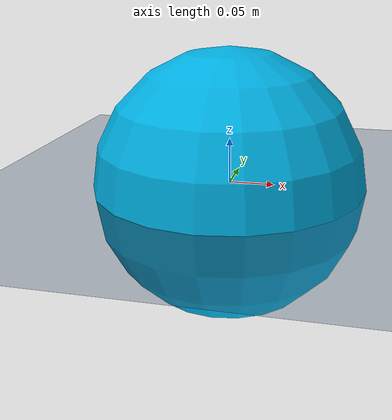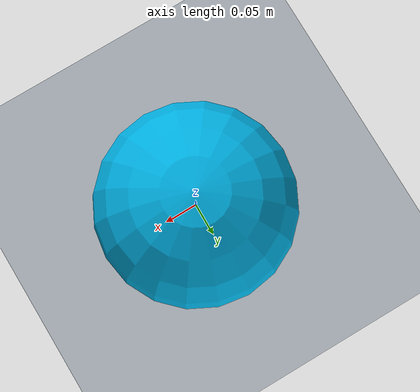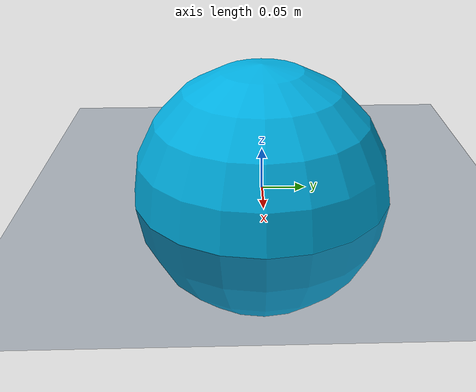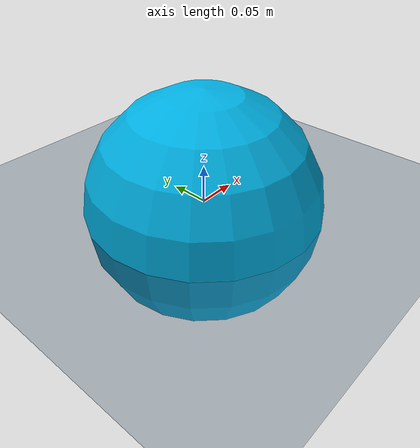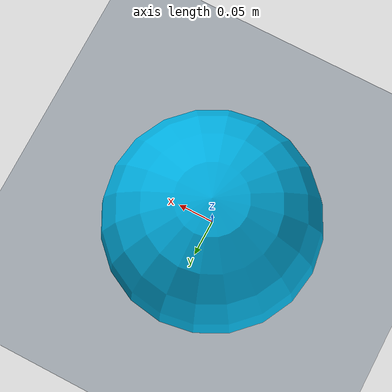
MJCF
<mujoco model="section_3_1_1_cable_system">
    <option gravity="0 0 -9.81" timestep="0.002"/>

    <asset>
        <texture name="grid" type="2d" builtin="checker" rgb1=".1 .2 .3" rgb2=".2 .3 .4" width="300" height="300"/>
        <material name="grid_mat" texture="grid" texrepeat="10 10"/>
    </asset>

    <worldbody>
        <light pos="0 0 10" dir="0 0 -1"/>
        <geom type="plane" size="10 10 0.1" material="grid_mat"/>

        <site name="anchor_b" pos="0 0 0" size="0.05" rgba="1 0 0 1"/>

        <body name="drone" pos="0 0 0">
            <freejoint name="drone_joint"/>
            <geom type="sphere" size="0.15" rgba="0 0.7 0.9 1" mass="1.5"/>
            <site name="attachment_a" pos="0 0 0" size="0.02" rgba="1 1 0 1"/>
        </body>
    </worldbody>

    <tendon>
        <spatial name="cable_tether" limited="true" range="0 5.0" width="0.02" rgba="0 0.8 0 1">
            <site site="anchor_b"/>
            <site site="attachment_a"/>
        </spatial>
    </tendon>
</mujoco>
